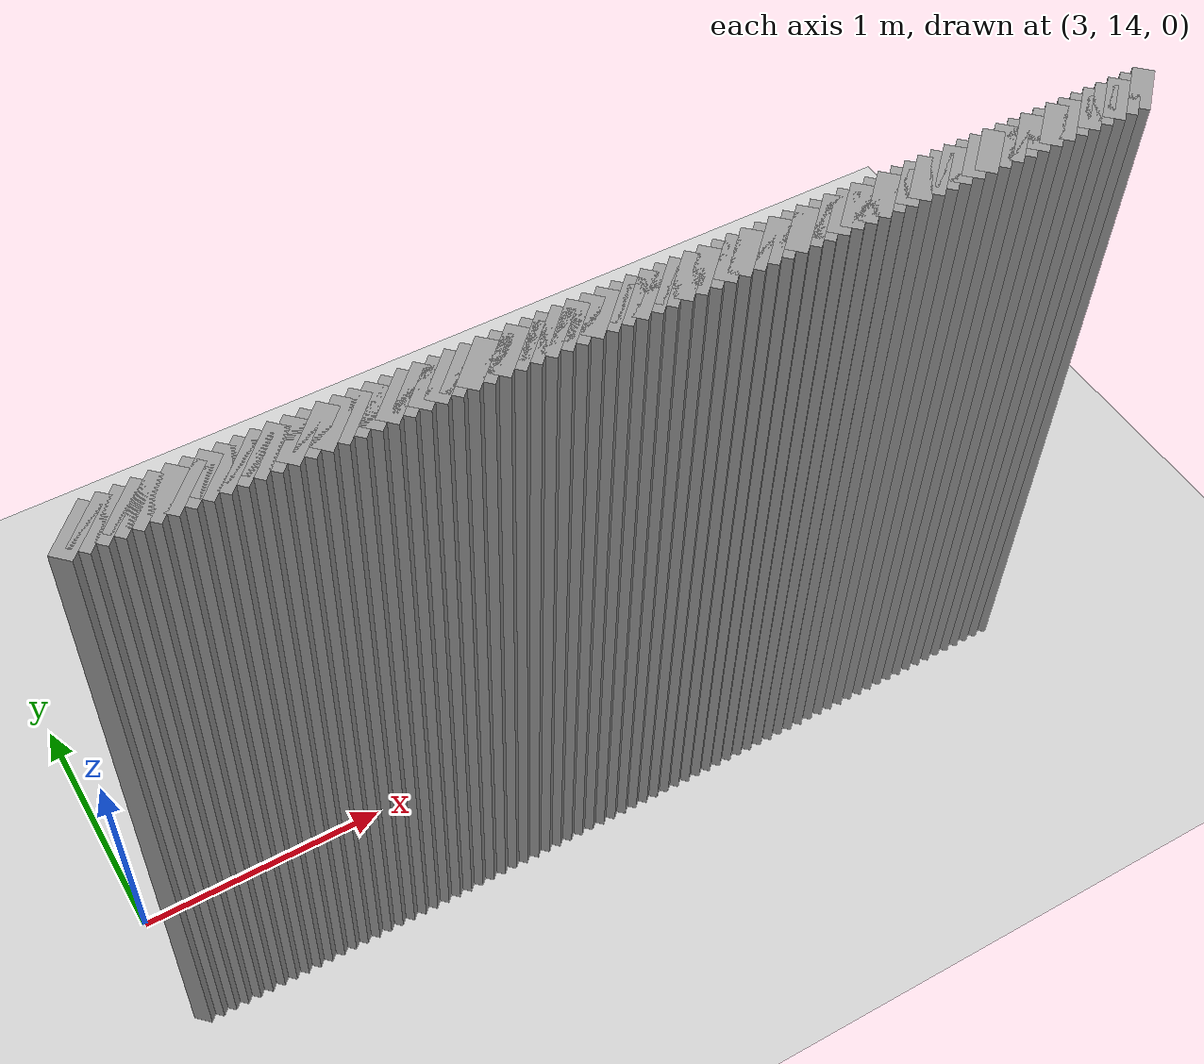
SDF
<sdf version="1.5">
 <world name="default">
  <include><uri>model://ground_plane</uri></include>
  <include><uri>model://sun</uri></include>
  <model name="grey_wall_818">
   <static>1</static>
   <link name="link">
    <pose>3.1 13.600000000000001  1.4 0 0 -0.7853981633974572</pose>
    <collision name="collision">
     <geometry><box><size>0.07071067811865513 .2  2.8</size></box></geometry>
    </collision>
    <visual name="visual">
     <cast_shadows>0</cast_shadows>
     <geometry><box><size>0.07071067811865513 .2  2.8</size></box></geometry>
     <material>
      <script>
       <uri>model://grey_wall/materials/scripts</uri>
       <uri>model://grey_wall/materials/textures</uri>
       <name>vrc/grey_wall</name>
      </script>
     </material>
    </visual>
   </link>
  </model>
  <model name="grey_wall_819">
   <static>1</static>
   <link name="link">
    <pose>3.1500000000000004 13.600000000000001  1.4 0 0 -0.7853981633974572</pose>
    <collision name="collision">
     <geometry><box><size>0.07071067811865513 .2  2.8</size></box></geometry>
    </collision>
    <visual name="visual">
     <cast_shadows>0</cast_shadows>
     <geometry><box><size>0.07071067811865513 .2  2.8</size></box></geometry>
     <material>
      <script>
       <uri>model://grey_wall/materials/scripts</uri>
       <uri>model://grey_wall/materials/textures</uri>
       <name>vrc/grey_wall</name>
      </script>
     </material>
    </visual>
   </link>
  </model>
  <model name="grey_wall_820">
   <static>1</static>
   <link name="link">
    <pose>3.2 13.600000000000001  1.4 0 0 -0.7853981633974572</pose>
    <collision name="collision">
     <geometry><box><size>0.07071067811865513 .2  2.8</size></box></geometry>
    </collision>
    <visual name="visual">
     <cast_shadows>0</cast_shadows>
     <geometry><box><size>0.07071067811865513 .2  2.8</size></box></geometry>
     <material>
      <script>
       <uri>model://grey_wall/materials/scripts</uri>
       <uri>model://grey_wall/materials/textures</uri>
       <name>vrc/grey_wall</name>
      </script>
     </material>
    </visual>
   </link>
  </model>
  <model name="grey_wall_821">
   <static>1</static>
   <link name="link">
    <pose>3.25 13.600000000000001  1.4 0 0 -0.7853981633974572</pose>
    <collision name="collision">
     <geometry><box><size>0.07071067811865513 .2  2.8</size></box></geometry>
    </collision>
    <visual name="visual">
     <cast_shadows>0</cast_shadows>
     <geometry><box><size>0.07071067811865513 .2  2.8</size></box></geometry>
     <material>
      <script>
       <uri>model://grey_wall/materials/scripts</uri>
       <uri>model://grey_wall/materials/textures</uri>
       <name>vrc/grey_wall</name>
      </script>
     </material>
    </visual>
   </link>
  </model>
  <model name="grey_wall_822">
   <static>1</static>
   <link name="link">
    <pose>3.3000000000000003 13.600000000000001  1.4 0 0 -0.7853981633974572</pose>
    <collision name="collision">
     <geometry><box><size>0.07071067811865513 .2  2.8</size></box></geometry>
    </collision>
    <visual name="visual">
     <cast_shadows>0</cast_shadows>
     <geometry><box><size>0.07071067811865513 .2  2.8</size></box></geometry>
     <material>
      <script>
       <uri>model://grey_wall/materials/scripts</uri>
       <uri>model://grey_wall/materials/textures</uri>
       <name>vrc/grey_wall</name>
      </script>
     </material>
    </visual>
   </link>
  </model>
  <model name="grey_wall_823">
   <static>1</static>
   <link name="link">
    <pose>3.35 13.600000000000001  1.4 0 0 -0.7853981633974572</pose>
    <collision name="collision">
     <geometry><box><size>0.07071067811865513 .2  2.8</size></box></geometry>
    </collision>
    <visual name="visual">
     <cast_shadows>0</cast_shadows>
     <geometry><box><size>0.07071067811865513 .2  2.8</size></box></geometry>
     <material>
      <script>
       <uri>model://grey_wall/materials/scripts</uri>
       <uri>model://grey_wall/materials/textures</uri>
       <name>vrc/grey_wall</name>
      </script>
     </material>
    </visual>
   </link>
  </model>
  <model name="grey_wall_824">
   <static>1</static>
   <link name="link">
    <pose>3.4000000000000004 13.600000000000001  1.4 0 0 -0.7853981633974572</pose>
    <collision name="collision">
     <geometry><box><size>0.07071067811865513 .2  2.8</size></box></geometry>
    </collision>
    <visual name="visual">
     <cast_shadows>0</cast_shadows>
     <geometry><box><size>0.07071067811865513 .2  2.8</size></box></geometry>
     <material>
      <script>
       <uri>model://grey_wall/materials/scripts</uri>
       <uri>model://grey_wall/materials/textures</uri>
       <name>vrc/grey_wall</name>
      </script>
     </material>
    </visual>
   </link>
  </model>
  <model name="grey_wall_825">
   <static>1</static>
   <link name="link">
    <pose>3.45 13.600000000000001  1.4 0 0 -0.7853981633974572</pose>
    <collision name="collision">
     <geometry><box><size>0.07071067811865513 .2  2.8</size></box></geometry>
    </collision>
    <visual name="visual">
     <cast_shadows>0</cast_shadows>
     <geometry><box><size>0.07071067811865513 .2  2.8</size></box></geometry>
     <material>
      <script>
       <uri>model://grey_wall/materials/scripts</uri>
       <uri>model://grey_wall/materials/textures</uri>
       <name>vrc/grey_wall</name>
      </script>
     </material>
    </visual>
   </link>
  </model>
  <model name="grey_wall_826">
   <static>1</static>
   <link name="link">
    <pose>3.5 13.600000000000001  1.4 0 0 -0.7853981633974572</pose>
    <collision name="collision">
     <geometry><box><size>0.07071067811865513 .2  2.8</size></box></geometry>
    </collision>
    <visual name="visual">
     <cast_shadows>0</cast_shadows>
     <geometry><box><size>0.07071067811865513 .2  2.8</size></box></geometry>
     <material>
      <script>
       <uri>model://grey_wall/materials/scripts</uri>
       <uri>model://grey_wall/materials/textures</uri>
       <name>vrc/grey_wall</name>
      </script>
     </material>
    </visual>
   </link>
  </model>
  <model name="grey_wall_827">
   <static>1</static>
   <link name="link">
    <pose>3.5500000000000003 13.600000000000001  1.4 0 0 -0.7853981633974572</pose>
    <collision name="collision">
     <geometry><box><size>0.07071067811865513 .2  2.8</size></box></geometry>
    </collision>
    <visual name="visual">
     <cast_shadows>0</cast_shadows>
     <geometry><box><size>0.07071067811865513 .2  2.8</size></box></geometry>
     <material>
      <script>
       <uri>model://grey_wall/materials/scripts</uri>
       <uri>model://grey_wall/materials/textures</uri>
       <name>vrc/grey_wall</name>
      </script>
     </material>
    </visual>
   </link>
  </model>
  <model name="grey_wall_828">
   <static>1</static>
   <link name="link">
    <pose>3.6 13.600000000000001  1.4 0 0 -0.7853981633974572</pose>
    <collision name="collision">
     <geometry><box><size>0.07071067811865513 .2  2.8</size></box></geometry>
    </collision>
    <visual name="visual">
     <cast_shadows>0</cast_shadows>
     <geometry><box><size>0.07071067811865513 .2  2.8</size></box></geometry>
     <material>
      <script>
       <uri>model://grey_wall/materials/scripts</uri>
       <uri>model://grey_wall/materials/textures</uri>
       <name>vrc/grey_wall</name>
      </script>
     </material>
    </visual>
   </link>
  </model>
  <model name="grey_wall_829">
   <static>1</static>
   <link name="link">
    <pose>3.6500000000000004 13.600000000000001  1.4 0 0 -0.7853981633974572</pose>
    <collision name="collision">
     <geometry><box><size>0.07071067811865513 .2  2.8</size></box></geometry>
    </collision>
    <visual name="visual">
     <cast_shadows>0</cast_shadows>
     <geometry><box><size>0.07071067811865513 .2  2.8</size></box></geometry>
     <material>
      <script>
       <uri>model://grey_wall/materials/scripts</uri>
       <uri>model://grey_wall/materials/textures</uri>
       <name>vrc/grey_wall</name>
      </script>
     </material>
    </visual>
   </link>
  </model>
  <model name="grey_wall_830">
   <static>1</static>
   <link name="link">
    <pose>3.7 13.600000000000001  1.4 0 0 -0.7853981633974572</pose>
    <collision name="collision">
     <geometry><box><size>0.07071067811865513 .2  2.8</size></box></geometry>
    </collision>
    <visual name="visual">
     <cast_shadows>0</cast_shadows>
     <geometry><box><size>0.07071067811865513 .2  2.8</size></box></geometry>
     <material>
      <script>
       <uri>model://grey_wall/materials/scripts</uri>
       <uri>model://grey_wall/materials/textures</uri>
       <name>vrc/grey_wall</name>
      </script>
     </material>
    </visual>
   </link>
  </model>
  <model name="grey_wall_831">
   <static>1</static>
   <link name="link">
    <pose>3.75 13.600000000000001  1.4 0 0 -0.7853981633974572</pose>
    <collision name="collision">
     <geometry><box><size>0.07071067811865513 .2  2.8</size></box></geometry>
    </collision>
    <visual name="visual">
     <cast_shadows>0</cast_shadows>
     <geometry><box><size>0.07071067811865513 .2  2.8</size></box></geometry>
     <material>
      <script>
       <uri>model://grey_wall/materials/scripts</uri>
       <uri>model://grey_wall/materials/textures</uri>
       <name>vrc/grey_wall</name>
      </script>
     </material>
    </visual>
   </link>
  </model>
  <model name="grey_wall_832">
   <static>1</static>
   <link name="link">
    <pose>3.8000000000000003 13.600000000000001  1.4 0 0 -0.7853981633974572</pose>
    <collision name="collision">
     <geometry><box><size>0.07071067811865513 .2  2.8</size></box></geometry>
    </collision>
    <visual name="visual">
     <cast_shadows>0</cast_shadows>
     <geometry><box><size>0.07071067811865513 .2  2.8</size></box></geometry>
     <material>
      <script>
       <uri>model://grey_wall/materials/scripts</uri>
       <uri>model://grey_wall/materials/textures</uri>
       <name>vrc/grey_wall</name>
      </script>
     </material>
    </visual>
   </link>
  </model>
  <model name="grey_wall_833">
   <static>1</static>
   <link name="link">
    <pose>3.85 13.600000000000001  1.4 0 0 -0.7853981633974572</pose>
    <collision name="collision">
     <geometry><box><size>0.07071067811865513 .2  2.8</size></box></geometry>
    </collision>
    <visual name="visual">
     <cast_shadows>0</cast_shadows>
     <geometry><box><size>0.07071067811865513 .2  2.8</size></box></geometry>
     <material>
      <script>
       <uri>model://grey_wall/materials/scripts</uri>
       <uri>model://grey_wall/materials/textures</uri>
       <name>vrc/grey_wall</name>
      </script>
     </material>
    </visual>
   </link>
  </model>
  <model name="grey_wall_834">
   <static>1</static>
   <link name="link">
    <pose>3.9000000000000004 13.600000000000001  1.4 0 0 -0.7853981633974572</pose>
    <collision name="collision">
     <geometry><box><size>0.07071067811865513 .2  2.8</size></box></geometry>
    </collision>
    <visual name="visual">
     <cast_shadows>0</cast_shadows>
     <geometry><box><size>0.07071067811865513 .2  2.8</size></box></geometry>
     <material>
      <script>
       <uri>model://grey_wall/materials/scripts</uri>
       <uri>model://grey_wall/materials/textures</uri>
       <name>vrc/grey_wall</name>
      </script>
     </material>
    </visual>
   </link>
  </model>
  <model name="grey_wall_835">
   <static>1</static>
   <link name="link">
    <pose>3.95 13.600000000000001  1.4 0 0 -0.7853981633974572</pose>
    <collision name="collision">
     <geometry><box><size>0.07071067811865513 .2  2.8</size></box></geometry>
    </collision>
    <visual name="visual">
     <cast_shadows>0</cast_shadows>
     <geometry><box><size>0.07071067811865513 .2  2.8</size></box></geometry>
     <material>
      <script>
       <uri>model://grey_wall/materials/scripts</uri>
       <uri>model://grey_wall/materials/textures</uri>
       <name>vrc/grey_wall</name>
      </script>
     </material>
    </visual>
   </link>
  </model>
  <model name="grey_wall_836">
   <static>1</static>
   <link name="link">
    <pose>4.0 13.600000000000001  1.4 0 0 -0.7853981633974527</pose>
    <collision name="collision">
     <geometry><box><size>0.07071067811865545 .2  2.8</size></box></geometry>
    </collision>
    <visual name="visual">
     <cast_shadows>0</cast_shadows>
     <geometry><box><size>0.07071067811865545 .2  2.8</size></box></geometry>
     <material>
      <script>
       <uri>model://grey_wall/materials/scripts</uri>
       <uri>model://grey_wall/materials/textures</uri>
       <name>vrc/grey_wall</name>
      </script>
     </material>
    </visual>
   </link>
  </model>
  <model name="grey_wall_837">
   <static>1</static>
   <link name="link">
    <pose>4.05 13.600000000000001  1.4 0 0 -0.7853981633974483</pose>
    <collision name="collision">
     <geometry><box><size>0.07071067811865576 .2  2.8</size></box></geometry>
    </collision>
    <visual name="visual">
     <cast_shadows>0</cast_shadows>
     <geometry><box><size>0.07071067811865576 .2  2.8</size></box></geometry>
     <material>
      <script>
       <uri>model://grey_wall/materials/scripts</uri>
       <uri>model://grey_wall/materials/textures</uri>
       <name>vrc/grey_wall</name>
      </script>
     </material>
    </visual>
   </link>
  </model>
  <model name="grey_wall_838">
   <static>1</static>
   <link name="link">
    <pose>4.1000000000000005 13.600000000000001  1.4 0 0 -0.7853981633974483</pose>
    <collision name="collision">
     <geometry><box><size>0.07071067811865576 .2  2.8</size></box></geometry>
    </collision>
    <visual name="visual">
     <cast_shadows>0</cast_shadows>
     <geometry><box><size>0.07071067811865576 .2  2.8</size></box></geometry>
     <material>
      <script>
       <uri>model://grey_wall/materials/scripts</uri>
       <uri>model://grey_wall/materials/textures</uri>
       <name>vrc/grey_wall</name>
      </script>
     </material>
    </visual>
   </link>
  </model>
  <model name="grey_wall_839">
   <static>1</static>
   <link name="link">
    <pose>4.15 13.600000000000001  1.4 0 0 -0.7853981633974483</pose>
    <collision name="collision">
     <geometry><box><size>0.07071067811865576 .2  2.8</size></box></geometry>
    </collision>
    <visual name="visual">
     <cast_shadows>0</cast_shadows>
     <geometry><box><size>0.07071067811865576 .2  2.8</size></box></geometry>
     <material>
      <script>
       <uri>model://grey_wall/materials/scripts</uri>
       <uri>model://grey_wall/materials/textures</uri>
       <name>vrc/grey_wall</name>
      </script>
     </material>
    </visual>
   </link>
  </model>
  <model name="grey_wall_840">
   <static>1</static>
   <link name="link">
    <pose>4.2 13.600000000000001  1.4 0 0 -0.7853981633974483</pose>
    <collision name="collision">
     <geometry><box><size>0.07071067811865576 .2  2.8</size></box></geometry>
    </collision>
    <visual name="visual">
     <cast_shadows>0</cast_shadows>
     <geometry><box><size>0.07071067811865576 .2  2.8</size></box></geometry>
     <material>
      <script>
       <uri>model://grey_wall/materials/scripts</uri>
       <uri>model://grey_wall/materials/textures</uri>
       <name>vrc/grey_wall</name>
      </script>
     </material>
    </visual>
   </link>
  </model>
  <model name="grey_wall_841">
   <static>1</static>
   <link name="link">
    <pose>4.25 13.600000000000001  1.4 0 0 -0.7853981633974483</pose>
    <collision name="collision">
     <geometry><box><size>0.07071067811865576 .2  2.8</size></box></geometry>
    </collision>
    <visual name="visual">
     <cast_shadows>0</cast_shadows>
     <geometry><box><size>0.07071067811865576 .2  2.8</size></box></geometry>
     <material>
      <script>
       <uri>model://grey_wall/materials/scripts</uri>
       <uri>model://grey_wall/materials/textures</uri>
       <name>vrc/grey_wall</name>
      </script>
     </material>
    </visual>
   </link>
  </model>
  <model name="grey_wall_842">
   <static>1</static>
   <link name="link">
    <pose>4.3 13.600000000000001  1.4 0 0 -0.7853981633974483</pose>
    <collision name="collision">
     <geometry><box><size>0.07071067811865576 .2  2.8</size></box></geometry>
    </collision>
    <visual name="visual">
     <cast_shadows>0</cast_shadows>
     <geometry><box><size>0.07071067811865576 .2  2.8</size></box></geometry>
     <material>
      <script>
       <uri>model://grey_wall/materials/scripts</uri>
       <uri>model://grey_wall/materials/textures</uri>
       <name>vrc/grey_wall</name>
      </script>
     </material>
    </visual>
   </link>
  </model>
  <model name="grey_wall_843">
   <static>1</static>
   <link name="link">
    <pose>4.3500000000000005 13.600000000000001  1.4 0 0 -0.7853981633974483</pose>
    <collision name="collision">
     <geometry><box><size>0.07071067811865576 .2  2.8</size></box></geometry>
    </collision>
    <visual name="visual">
     <cast_shadows>0</cast_shadows>
     <geometry><box><size>0.07071067811865576 .2  2.8</size></box></geometry>
     <material>
      <script>
       <uri>model://grey_wall/materials/scripts</uri>
       <uri>model://grey_wall/materials/textures</uri>
       <name>vrc/grey_wall</name>
      </script>
     </material>
    </visual>
   </link>
  </model>
  <model name="grey_wall_844">
   <static>1</static>
   <link name="link">
    <pose>4.4 13.600000000000001  1.4 0 0 -0.7853981633974483</pose>
    <collision name="collision">
     <geometry><box><size>0.07071067811865576 .2  2.8</size></box></geometry>
    </collision>
    <visual name="visual">
     <cast_shadows>0</cast_shadows>
     <geometry><box><size>0.07071067811865576 .2  2.8</size></box></geometry>
     <material>
      <script>
       <uri>model://grey_wall/materials/scripts</uri>
       <uri>model://grey_wall/materials/textures</uri>
       <name>vrc/grey_wall</name>
      </script>
     </material>
    </visual>
   </link>
  </model>
  <model name="grey_wall_845">
   <static>1</static>
   <link name="link">
    <pose>4.45 13.600000000000001  1.4 0 0 -0.7853981633974483</pose>
    <collision name="collision">
     <geometry><box><size>0.07071067811865576 .2  2.8</size></box></geometry>
    </collision>
    <visual name="visual">
     <cast_shadows>0</cast_shadows>
     <geometry><box><size>0.07071067811865576 .2  2.8</size></box></geometry>
     <material>
      <script>
       <uri>model://grey_wall/materials/scripts</uri>
       <uri>model://grey_wall/materials/textures</uri>
       <name>vrc/grey_wall</name>
      </script>
     </material>
    </visual>
   </link>
  </model>
  <model name="grey_wall_846">
   <static>1</static>
   <link name="link">
    <pose>4.5 13.600000000000001  1.4 0 0 -0.7853981633974483</pose>
    <collision name="collision">
     <geometry><box><size>0.07071067811865576 .2  2.8</size></box></geometry>
    </collision>
    <visual name="visual">
     <cast_shadows>0</cast_shadows>
     <geometry><box><size>0.07071067811865576 .2  2.8</size></box></geometry>
     <material>
      <script>
       <uri>model://grey_wall/materials/scripts</uri>
       <uri>model://grey_wall/materials/textures</uri>
       <name>vrc/grey_wall</name>
      </script>
     </material>
    </visual>
   </link>
  </model>
  <model name="grey_wall_847">
   <static>1</static>
   <link name="link">
    <pose>4.55 13.600000000000001  1.4 0 0 -0.7853981633974483</pose>
    <collision name="collision">
     <geometry><box><size>0.07071067811865576 .2  2.8</size></box></geometry>
    </collision>
    <visual name="visual">
     <cast_shadows>0</cast_shadows>
     <geometry><box><size>0.07071067811865576 .2  2.8</size></box></geometry>
     <material>
      <script>
       <uri>model://grey_wall/materials/scripts</uri>
       <uri>model://grey_wall/materials/textures</uri>
       <name>vrc/grey_wall</name>
      </script>
     </material>
    </visual>
   </link>
  </model>
  <model name="grey_wall_848">
   <static>1</static>
   <link name="link">
    <pose>4.6000000000000005 13.600000000000001  1.4 0 0 -0.7853981633974483</pose>
    <collision name="collision">
     <geometry><box><size>0.07071067811865576 .2  2.8</size></box></geometry>
    </collision>
    <visual name="visual">
     <cast_shadows>0</cast_shadows>
     <geometry><box><size>0.07071067811865576 .2  2.8</size></box></geometry>
     <material>
      <script>
       <uri>model://grey_wall/materials/scripts</uri>
       <uri>model://grey_wall/materials/textures</uri>
       <name>vrc/grey_wall</name>
      </script>
     </material>
    </visual>
   </link>
  </model>
  <model name="grey_wall_849">
   <static>1</static>
   <link name="link">
    <pose>4.65 13.600000000000001  1.4 0 0 -0.7853981633974483</pose>
    <collision name="collision">
     <geometry><box><size>0.07071067811865576 .2  2.8</size></box></geometry>
    </collision>
    <visual name="visual">
     <cast_shadows>0</cast_shadows>
     <geometry><box><size>0.07071067811865576 .2  2.8</size></box></geometry>
     <material>
      <script>
       <uri>model://grey_wall/materials/scripts</uri>
       <uri>model://grey_wall/materials/textures</uri>
       <name>vrc/grey_wall</name>
      </script>
     </material>
    </visual>
   </link>
  </model>
  <model name="grey_wall_850">
   <static>1</static>
   <link name="link">
    <pose>4.7 13.600000000000001  1.4 0 0 -0.7853981633974483</pose>
    <collision name="collision">
     <geometry><box><size>0.07071067811865576 .2  2.8</size></box></geometry>
    </collision>
    <visual name="visual">
     <cast_shadows>0</cast_shadows>
     <geometry><box><size>0.07071067811865576 .2  2.8</size></box></geometry>
     <material>
      <script>
       <uri>model://grey_wall/materials/scripts</uri>
       <uri>model://grey_wall/materials/textures</uri>
       <name>vrc/grey_wall</name>
      </script>
     </material>
    </visual>
   </link>
  </model>
  <model name="grey_wall_851">
   <static>1</static>
   <link name="link">
    <pose>4.75 13.600000000000001  1.4 0 0 -0.7853981633974483</pose>
    <collision name="collision">
     <geometry><box><size>0.07071067811865576 .2  2.8</size></box></geometry>
    </collision>
    <visual name="visual">
     <cast_shadows>0</cast_shadows>
     <geometry><box><size>0.07071067811865576 .2  2.8</size></box></geometry>
     <material>
      <script>
       <uri>model://grey_wall/materials/scripts</uri>
       <uri>model://grey_wall/materials/textures</uri>
       <name>vrc/grey_wall</name>
      </script>
     </material>
    </visual>
   </link>
  </model>
  <model name="grey_wall_852">
   <static>1</static>
   <link name="link">
    <pose>4.800000000000001 13.600000000000001  1.4 0 0 -0.7853981633974483</pose>
    <collision name="collision">
     <geometry><box><size>0.07071067811865576 .2  2.8</size></box></geometry>
    </collision>
    <visual name="visual">
     <cast_shadows>0</cast_shadows>
     <geometry><box><size>0.07071067811865576 .2  2.8</size></box></geometry>
     <material>
      <script>
       <uri>model://grey_wall/materials/scripts</uri>
       <uri>model://grey_wall/materials/textures</uri>
       <name>vrc/grey_wall</name>
      </script>
     </material>
    </visual>
   </link>
  </model>
  <model name="grey_wall_853">
   <static>1</static>
   <link name="link">
    <pose>4.8500000000000005 13.600000000000001  1.4 0 0 -0.7853981633974483</pose>
    <collision name="collision">
     <geometry><box><size>0.07071067811865576 .2  2.8</size></box></geometry>
    </collision>
    <visual name="visual">
     <cast_shadows>0</cast_shadows>
     <geometry><box><size>0.07071067811865576 .2  2.8</size></box></geometry>
     <material>
      <script>
       <uri>model://grey_wall/materials/scripts</uri>
       <uri>model://grey_wall/materials/textures</uri>
       <name>vrc/grey_wall</name>
      </script>
     </material>
    </visual>
   </link>
  </model>
  <model name="grey_wall_854">
   <static>1</static>
   <link name="link">
    <pose>4.9 13.600000000000001  1.4 0 0 -0.7853981633974483</pose>
    <collision name="collision">
     <geometry><box><size>0.07071067811865576 .2  2.8</size></box></geometry>
    </collision>
    <visual name="visual">
     <cast_shadows>0</cast_shadows>
     <geometry><box><size>0.07071067811865576 .2  2.8</size></box></geometry>
     <material>
      <script>
       <uri>model://grey_wall/materials/scripts</uri>
       <uri>model://grey_wall/materials/textures</uri>
       <name>vrc/grey_wall</name>
      </script>
     </material>
    </visual>
   </link>
  </model>
  <model name="grey_wall_855">
   <static>1</static>
   <link name="link">
    <pose>4.95 13.600000000000001  1.4 0 0 -0.7853981633974483</pose>
    <collision name="collision">
     <geometry><box><size>0.07071067811865576 .2  2.8</size></box></geometry>
    </collision>
    <visual name="visual">
     <cast_shadows>0</cast_shadows>
     <geometry><box><size>0.07071067811865576 .2  2.8</size></box></geometry>
     <material>
      <script>
       <uri>model://grey_wall/materials/scripts</uri>
       <uri>model://grey_wall/materials/textures</uri>
       <name>vrc/grey_wall</name>
      </script>
     </material>
    </visual>
   </link>
  </model>
  <model name="grey_wall_856">
   <static>1</static>
   <link name="link">
    <pose>5.0 13.600000000000001  1.4 0 0 -0.7853981633974483</pose>
    <collision name="collision">
     <geometry><box><size>0.07071067811865576 .2  2.8</size></box></geometry>
    </collision>
    <visual name="visual">
     <cast_shadows>0</cast_shadows>
     <geometry><box><size>0.07071067811865576 .2  2.8</size></box></geometry>
     <material>
      <script>
       <uri>model://grey_wall/materials/scripts</uri>
       <uri>model://grey_wall/materials/textures</uri>
       <name>vrc/grey_wall</name>
      </script>
     </material>
    </visual>
   </link>
  </model>
  <model name="grey_wall_857">
   <static>1</static>
   <link name="link">
    <pose>5.050000000000001 13.600000000000001  1.4 0 0 -0.7853981633974483</pose>
    <collision name="collision">
     <geometry><box><size>0.07071067811865576 .2  2.8</size></box></geometry>
    </collision>
    <visual name="visual">
     <cast_shadows>0</cast_shadows>
     <geometry><box><size>0.07071067811865576 .2  2.8</size></box></geometry>
     <material>
      <script>
       <uri>model://grey_wall/materials/scripts</uri>
       <uri>model://grey_wall/materials/textures</uri>
       <name>vrc/grey_wall</name>
      </script>
     </material>
    </visual>
   </link>
  </model>
  <model name="grey_wall_858">
   <static>1</static>
   <link name="link">
    <pose>5.1000000000000005 13.600000000000001  1.4 0 0 -0.7853981633974483</pose>
    <collision name="collision">
     <geometry><box><size>0.07071067811865576 .2  2.8</size></box></geometry>
    </collision>
    <visual name="visual">
     <cast_shadows>0</cast_shadows>
     <geometry><box><size>0.07071067811865576 .2  2.8</size></box></geometry>
     <material>
      <script>
       <uri>model://grey_wall/materials/scripts</uri>
       <uri>model://grey_wall/materials/textures</uri>
       <name>vrc/grey_wall</name>
      </script>
     </material>
    </visual>
   </link>
  </model>
  <model name="grey_wall_859">
   <static>1</static>
   <link name="link">
    <pose>5.15 13.600000000000001  1.4 0 0 -0.7853981633974483</pose>
    <collision name="collision">
     <geometry><box><size>0.07071067811865576 .2  2.8</size></box></geometry>
    </collision>
    <visual name="visual">
     <cast_shadows>0</cast_shadows>
     <geometry><box><size>0.07071067811865576 .2  2.8</size></box></geometry>
     <material>
      <script>
       <uri>model://grey_wall/materials/scripts</uri>
       <uri>model://grey_wall/materials/textures</uri>
       <name>vrc/grey_wall</name>
      </script>
     </material>
    </visual>
   </link>
  </model>
  <model name="grey_wall_860">
   <static>1</static>
   <link name="link">
    <pose>5.2 13.600000000000001  1.4 0 0 -0.7853981633974483</pose>
    <collision name="collision">
     <geometry><box><size>0.07071067811865576 .2  2.8</size></box></geometry>
    </collision>
    <visual name="visual">
     <cast_shadows>0</cast_shadows>
     <geometry><box><size>0.07071067811865576 .2  2.8</size></box></geometry>
     <material>
      <script>
       <uri>model://grey_wall/materials/scripts</uri>
       <uri>model://grey_wall/materials/textures</uri>
       <name>vrc/grey_wall</name>
      </script>
     </material>
    </visual>
   </link>
  </model>
  <model name="grey_wall_861">
   <static>1</static>
   <link name="link">
    <pose>5.25 13.600000000000001  1.4 0 0 -0.7853981633974483</pose>
    <collision name="collision">
     <geometry><box><size>0.07071067811865576 .2  2.8</size></box></geometry>
    </collision>
    <visual name="visual">
     <cast_shadows>0</cast_shadows>
     <geometry><box><size>0.07071067811865576 .2  2.8</size></box></geometry>
     <material>
      <script>
       <uri>model://grey_wall/materials/scripts</uri>
       <uri>model://grey_wall/materials/textures</uri>
       <name>vrc/grey_wall</name>
      </script>
     </material>
    </visual>
   </link>
  </model>
  <model name="grey_wall_862">
   <static>1</static>
   <link name="link">
    <pose>5.300000000000001 13.600000000000001  1.4 0 0 -0.7853981633974483</pose>
    <collision name="collision">
     <geometry><box><size>0.07071067811865576 .2  2.8</size></box></geometry>
    </collision>
    <visual name="visual">
     <cast_shadows>0</cast_shadows>
     <geometry><box><size>0.07071067811865576 .2  2.8</size></box></geometry>
     <material>
      <script>
       <uri>model://grey_wall/materials/scripts</uri>
       <uri>model://grey_wall/materials/textures</uri>
       <name>vrc/grey_wall</name>
      </script>
     </material>
    </visual>
   </link>
  </model>
  <model name="grey_wall_863">
   <static>1</static>
   <link name="link">
    <pose>5.3500000000000005 13.600000000000001  1.4 0 0 -0.7853981633974483</pose>
    <collision name="collision">
     <geometry><box><size>0.07071067811865576 .2  2.8</size></box></geometry>
    </collision>
    <visual name="visual">
     <cast_shadows>0</cast_shadows>
     <geometry><box><size>0.07071067811865576 .2  2.8</size></box></geometry>
     <material>
      <script>
       <uri>model://grey_wall/materials/scripts</uri>
       <uri>model://grey_wall/materials/textures</uri>
       <name>vrc/grey_wall</name>
      </script>
     </material>
    </visual>
   </link>
  </model>
  <model name="grey_wall_864">
   <static>1</static>
   <link name="link">
    <pose>5.4 13.600000000000001  1.4 0 0 -0.7853981633974483</pose>
    <collision name="collision">
     <geometry><box><size>0.07071067811865576 .2  2.8</size></box></geometry>
    </collision>
    <visual name="visual">
     <cast_shadows>0</cast_shadows>
     <geometry><box><size>0.07071067811865576 .2  2.8</size></box></geometry>
     <material>
      <script>
       <uri>model://grey_wall/materials/scripts</uri>
       <uri>model://grey_wall/materials/textures</uri>
       <name>vrc/grey_wall</name>
      </script>
     </material>
    </visual>
   </link>
  </model>
  <model name="grey_wall_865">
   <static>1</static>
   <link name="link">
    <pose>5.45 13.600000000000001  1.4 0 0 -0.7853981633974483</pose>
    <collision name="collision">
     <geometry><box><size>0.07071067811865576 .2  2.8</size></box></geometry>
    </collision>
    <visual name="visual">
     <cast_shadows>0</cast_shadows>
     <geometry><box><size>0.07071067811865576 .2  2.8</size></box></geometry>
     <material>
      <script>
       <uri>model://grey_wall/materials/scripts</uri>
       <uri>model://grey_wall/materials/textures</uri>
       <name>vrc/grey_wall</name>
      </script>
     </material>
    </visual>
   </link>
  </model>
  <model name="grey_wall_866">
   <static>1</static>
   <link name="link">
    <pose>5.5 13.600000000000001  1.4 0 0 -0.7853981633974483</pose>
    <collision name="collision">
     <geometry><box><size>0.07071067811865576 .2  2.8</size></box></geometry>
    </collision>
    <visual name="visual">
     <cast_shadows>0</cast_shadows>
     <geometry><box><size>0.07071067811865576 .2  2.8</size></box></geometry>
     <material>
      <script>
       <uri>model://grey_wall/materials/scripts</uri>
       <uri>model://grey_wall/materials/textures</uri>
       <name>vrc/grey_wall</name>
      </script>
     </material>
    </visual>
   </link>
  </model>
  <model name="grey_wall_867">
   <static>1</static>
   <link name="link">
    <pose>5.550000000000001 13.600000000000001  1.4 0 0 -0.7853981633974483</pose>
    <collision name="collision">
     <geometry><box><size>0.07071067811865576 .2  2.8</size></box></geometry>
    </collision>
    <visual name="visual">
     <cast_shadows>0</cast_shadows>
     <geometry><box><size>0.07071067811865576 .2  2.8</size></box></geometry>
     <material>
      <script>
       <uri>model://grey_wall/materials/scripts</uri>
       <uri>model://grey_wall/materials/textures</uri>
       <name>vrc/grey_wall</name>
      </script>
     </material>
    </visual>
   </link>
  </model>
  <model name="grey_wall_868">
   <static>1</static>
   <link name="link">
    <pose>5.6000000000000005 13.600000000000001  1.4 0 0 -0.7853981633974483</pose>
    <collision name="collision">
     <geometry><box><size>0.07071067811865576 .2  2.8</size></box></geometry>
    </collision>
    <visual name="visual">
     <cast_shadows>0</cast_shadows>
     <geometry><box><size>0.07071067811865576 .2  2.8</size></box></geometry>
     <material>
      <script>
       <uri>model://grey_wall/materials/scripts</uri>
       <uri>model://grey_wall/materials/textures</uri>
       <name>vrc/grey_wall</name>
      </script>
     </material>
    </visual>
   </link>
  </model>
  <model name="grey_wall_869">
   <static>1</static>
   <link name="link">
    <pose>5.65 13.600000000000001  1.4 0 0 -0.7853981633974483</pose>
    <collision name="collision">
     <geometry><box><size>0.07071067811865576 .2  2.8</size></box></geometry>
    </collision>
    <visual name="visual">
     <cast_shadows>0</cast_shadows>
     <geometry><box><size>0.07071067811865576 .2  2.8</size></box></geometry>
     <material>
      <script>
       <uri>model://grey_wall/materials/scripts</uri>
       <uri>model://grey_wall/materials/textures</uri>
       <name>vrc/grey_wall</name>
      </script>
     </material>
    </visual>
   </link>
  </model>
  <model name="grey_wall_870">
   <static>1</static>
   <link name="link">
    <pose>5.7 13.600000000000001  1.4 0 0 -0.7853981633974483</pose>
    <collision name="collision">
     <geometry><box><size>0.07071067811865576 .2  2.8</size></box></geometry>
    </collision>
    <visual name="visual">
     <cast_shadows>0</cast_shadows>
     <geometry><box><size>0.07071067811865576 .2  2.8</size></box></geometry>
     <material>
      <script>
       <uri>model://grey_wall/materials/scripts</uri>
       <uri>model://grey_wall/materials/textures</uri>
       <name>vrc/grey_wall</name>
      </script>
     </material>
    </visual>
   </link>
  </model>
  <model name="grey_wall_871">
   <static>1</static>
   <link name="link">
    <pose>5.75 13.600000000000001  1.4 0 0 -0.7853981633974483</pose>
    <collision name="collision">
     <geometry><box><size>0.07071067811865576 .2  2.8</size></box></geometry>
    </collision>
    <visual name="visual">
     <cast_shadows>0</cast_shadows>
     <geometry><box><size>0.07071067811865576 .2  2.8</size></box></geometry>
     <material>
      <script>
       <uri>model://grey_wall/materials/scripts</uri>
       <uri>model://grey_wall/materials/textures</uri>
       <name>vrc/grey_wall</name>
      </script>
     </material>
    </visual>
   </link>
  </model>
  <model name="grey_wall_872">
   <static>1</static>
   <link name="link">
    <pose>5.800000000000001 13.600000000000001  1.4 0 0 -0.7853981633974483</pose>
    <collision name="collision">
     <geometry><box><size>0.07071067811865576 .2  2.8</size></box></geometry>
    </collision>
    <visual name="visual">
     <cast_shadows>0</cast_shadows>
     <geometry><box><size>0.07071067811865576 .2  2.8</size></box></geometry>
     <material>
      <script>
       <uri>model://grey_wall/materials/scripts</uri>
       <uri>model://grey_wall/materials/textures</uri>
       <name>vrc/grey_wall</name>
      </script>
     </material>
    </visual>
   </link>
  </model>
  <model name="grey_wall_873">
   <static>1</static>
   <link name="link">
    <pose>5.8500000000000005 13.600000000000001  1.4 0 0 -0.7853981633974483</pose>
    <collision name="collision">
     <geometry><box><size>0.07071067811865576 .2  2.8</size></box></geometry>
    </collision>
    <visual name="visual">
     <cast_shadows>0</cast_shadows>
     <geometry><box><size>0.07071067811865576 .2  2.8</size></box></geometry>
     <material>
      <script>
       <uri>model://grey_wall/materials/scripts</uri>
       <uri>model://grey_wall/materials/textures</uri>
       <name>vrc/grey_wall</name>
      </script>
     </material>
    </visual>
   </link>
  </model>
  <model name="grey_wall_874">
   <static>1</static>
   <link name="link">
    <pose>5.9 13.600000000000001  1.4 0 0 -0.7853981633974483</pose>
    <collision name="collision">
     <geometry><box><size>0.07071067811865576 .2  2.8</size></box></geometry>
    </collision>
    <visual name="visual">
     <cast_shadows>0</cast_shadows>
     <geometry><box><size>0.07071067811865576 .2  2.8</size></box></geometry>
     <material>
      <script>
       <uri>model://grey_wall/materials/scripts</uri>
       <uri>model://grey_wall/materials/textures</uri>
       <name>vrc/grey_wall</name>
      </script>
     </material>
    </visual>
   </link>
  </model>
  <model name="grey_wall_875">
   <static>1</static>
   <link name="link">
    <pose>5.95 13.600000000000001  1.4 0 0 -0.7853981633974483</pose>
    <collision name="collision">
     <geometry><box><size>0.07071067811865576 .2  2.8</size></box></geometry>
    </collision>
    <visual name="visual">
     <cast_shadows>0</cast_shadows>
     <geometry><box><size>0.07071067811865576 .2  2.8</size></box></geometry>
     <material>
      <script>
       <uri>model://grey_wall/materials/scripts</uri>
       <uri>model://grey_wall/materials/textures</uri>
       <name>vrc/grey_wall</name>
      </script>
     </material>
    </visual>
   </link>
  </model>
  <model name="grey_wall_876">
   <static>1</static>
   <link name="link">
    <pose>6.0 13.600000000000001  1.4 0 0 -0.7853981633974483</pose>
    <collision name="collision">
     <geometry><box><size>0.07071067811865576 .2  2.8</size></box></geometry>
    </collision>
    <visual name="visual">
     <cast_shadows>0</cast_shadows>
     <geometry><box><size>0.07071067811865576 .2  2.8</size></box></geometry>
     <material>
      <script>
       <uri>model://grey_wall/materials/scripts</uri>
       <uri>model://grey_wall/materials/textures</uri>
       <name>vrc/grey_wall</name>
      </script>
     </material>
    </visual>
   </link>
  </model>
  <model name="grey_wall_877">
   <static>1</static>
   <link name="link">
    <pose>6.050000000000001 13.600000000000001  1.4 0 0 -0.7853981633974483</pose>
    <collision name="collision">
     <geometry><box><size>0.07071067811865576 .2  2.8</size></box></geometry>
    </collision>
    <visual name="visual">
     <cast_shadows>0</cast_shadows>
     <geometry><box><size>0.07071067811865576 .2  2.8</size></box></geometry>
     <material>
      <script>
       <uri>model://grey_wall/materials/scripts</uri>
       <uri>model://grey_wall/materials/textures</uri>
       <name>vrc/grey_wall</name>
      </script>
     </material>
    </visual>
   </link>
  </model>
  <model name="grey_wall_878">
   <static>1</static>
   <link name="link">
    <pose>6.1000000000000005 13.600000000000001  1.4 0 0 -0.7853981633974483</pose>
    <collision name="collision">
     <geometry><box><size>0.07071067811865576 .2  2.8</size></box></geometry>
    </collision>
    <visual name="visual">
     <cast_shadows>0</cast_shadows>
     <geometry><box><size>0.07071067811865576 .2  2.8</size></box></geometry>
     <material>
      <script>
       <uri>model://grey_wall/materials/scripts</uri>
       <uri>model://grey_wall/materials/textures</uri>
       <name>vrc/grey_wall</name>
      </script>
     </material>
    </visual>
   </link>
  </model>
  <model name="grey_wall_879">
   <static>1</static>
   <link name="link">
    <pose>6.15 13.600000000000001  1.4 0 0 -0.7853981633974483</pose>
    <collision name="collision">
     <geometry><box><size>0.07071067811865576 .2  2.8</size></box></geometry>
    </collision>
    <visual name="visual">
     <cast_shadows>0</cast_shadows>
     <geometry><box><size>0.07071067811865576 .2  2.8</size></box></geometry>
     <material>
      <script>
       <uri>model://grey_wall/materials/scripts</uri>
       <uri>model://grey_wall/materials/textures</uri>
       <name>vrc/grey_wall</name>
      </script>
     </material>
    </visual>
   </link>
  </model>
  <model name="grey_wall_880">
   <static>1</static>
   <link name="link">
    <pose>6.2 13.600000000000001  1.4 0 0 -0.7853981633974483</pose>
    <collision name="collision">
     <geometry><box><size>0.07071067811865576 .2  2.8</size></box></geometry>
    </collision>
    <visual name="visual">
     <cast_shadows>0</cast_shadows>
     <geometry><box><size>0.07071067811865576 .2  2.8</size></box></geometry>
     <material>
      <script>
       <uri>model://grey_wall/materials/scripts</uri>
       <uri>model://grey_wall/materials/textures</uri>
       <name>vrc/grey_wall</name>
      </script>
     </material>
    </visual>
   </link>
  </model>
  <model name="grey_wall_881">
   <static>1</static>
   <link name="link">
    <pose>6.25 13.600000000000001  1.4 0 0 -0.7853981633974483</pose>
    <collision name="collision">
     <geometry><box><size>0.07071067811865576 .2  2.8</size></box></geometry>
    </collision>
    <visual name="visual">
     <cast_shadows>0</cast_shadows>
     <geometry><box><size>0.07071067811865576 .2  2.8</size></box></geometry>
     <material>
      <script>
       <uri>model://grey_wall/materials/scripts</uri>
       <uri>model://grey_wall/materials/textures</uri>
       <name>vrc/grey_wall</name>
      </script>
     </material>
    </visual>
   </link>
  </model>
  <model name="grey_wall_882">
   <static>1</static>
   <link name="link">
    <pose>6.300000000000001 13.600000000000001  1.4 0 0 -0.7853981633974483</pose>
    <collision name="collision">
     <geometry><box><size>0.07071067811865576 .2  2.8</size></box></geometry>
    </collision>
    <visual name="visual">
     <cast_shadows>0</cast_shadows>
     <geometry><box><size>0.07071067811865576 .2  2.8</size></box></geometry>
     <material>
      <script>
       <uri>model://grey_wall/materials/scripts</uri>
       <uri>model://grey_wall/materials/textures</uri>
       <name>vrc/grey_wall</name>
      </script>
     </material>
    </visual>
   </link>
  </model>
  <model name="grey_wall_883">
   <static>1</static>
   <link name="link">
    <pose>6.3500000000000005 13.600000000000001  1.4 0 0 -0.7853981633974483</pose>
    <collision name="collision">
     <geometry><box><size>0.07071067811865576 .2  2.8</size></box></geometry>
    </collision>
    <visual name="visual">
     <cast_shadows>0</cast_shadows>
     <geometry><box><size>0.07071067811865576 .2  2.8</size></box></geometry>
     <material>
      <script>
       <uri>model://grey_wall/materials/scripts</uri>
       <uri>model://grey_wall/materials/textures</uri>
       <name>vrc/grey_wall</name>
      </script>
     </material>
    </visual>
   </link>
  </model>
  <model name="grey_wall_884">
   <static>1</static>
   <link name="link">
    <pose>6.4 13.600000000000001  1.4 0 0 -0.7853981633974483</pose>
    <collision name="collision">
     <geometry><box><size>0.07071067811865576 .2  2.8</size></box></geometry>
    </collision>
    <visual name="visual">
     <cast_shadows>0</cast_shadows>
     <geometry><box><size>0.07071067811865576 .2  2.8</size></box></geometry>
     <material>
      <script>
       <uri>model://grey_wall/materials/scripts</uri>
       <uri>model://grey_wall/materials/textures</uri>
       <name>vrc/grey_wall</name>
      </script>
     </material>
    </visual>
   </link>
  </model>
  <model name="grey_wall_885">
   <static>1</static>
   <link name="link">
    <pose>6.45 13.600000000000001  1.4 0 0 -0.7853981633974483</pose>
    <collision name="collision">
     <geometry><box><size>0.07071067811865576 .2  2.8</size></box></geometry>
    </collision>
    <visual name="visual">
     <cast_shadows>0</cast_shadows>
     <geometry><box><size>0.07071067811865576 .2  2.8</size></box></geometry>
     <material>
      <script>
       <uri>model://grey_wall/materials/scripts</uri>
       <uri>model://grey_wall/materials/textures</uri>
       <name>vrc/grey_wall</name>
      </script>
     </material>
    </visual>
   </link>
  </model>
  <model name="grey_wall_886">
   <static>1</static>
   <link name="link">
    <pose>6.5 13.600000000000001  1.4 0 0 -0.7853981633974483</pose>
    <collision name="collision">
     <geometry><box><size>0.07071067811865576 .2  2.8</size></box></geometry>
    </collision>
    <visual name="visual">
     <cast_shadows>0</cast_shadows>
     <geometry><box><size>0.07071067811865576 .2  2.8</size></box></geometry>
     <material>
      <script>
       <uri>model://grey_wall/materials/scripts</uri>
       <uri>model://grey_wall/materials/textures</uri>
       <name>vrc/grey_wall</name>
      </script>
     </material>
    </visual>
   </link>
  </model>
  <model name="grey_wall_887">
   <static>1</static>
   <link name="link">
    <pose>6.550000000000001 13.600000000000001  1.4 0 0 -0.7853981633974483</pose>
    <collision name="collision">
     <geometry><box><size>0.07071067811865576 .2  2.8</size></box></geometry>
    </collision>
    <visual name="visual">
     <cast_shadows>0</cast_shadows>
     <geometry><box><size>0.07071067811865576 .2  2.8</size></box></geometry>
     <material>
      <script>
       <uri>model://grey_wall/materials/scripts</uri>
       <uri>model://grey_wall/materials/textures</uri>
       <name>vrc/grey_wall</name>
      </script>
     </material>
    </visual>
   </link>
  </model>
  <model name="grey_wall_888">
   <static>1</static>
   <link name="link">
    <pose>6.6000000000000005 13.600000000000001  1.4 0 0 -0.7853981633974483</pose>
    <collision name="collision">
     <geometry><box><size>0.07071067811865576 .2  2.8</size></box></geometry>
    </collision>
    <visual name="visual">
     <cast_shadows>0</cast_shadows>
     <geometry><box><size>0.07071067811865576 .2  2.8</size></box></geometry>
     <material>
      <script>
       <uri>model://grey_wall/materials/scripts</uri>
       <uri>model://grey_wall/materials/textures</uri>
       <name>vrc/grey_wall</name>
      </script>
     </material>
    </visual>
   </link>
  </model>
  <model name="grey_wall_889">
   <static>1</static>
   <link name="link">
    <pose>6.65 13.600000000000001  1.4 0 0 -0.7853981633974483</pose>
    <collision name="collision">
     <geometry><box><size>0.07071067811865576 .2  2.8</size></box></geometry>
    </collision>
    <visual name="visual">
     <cast_shadows>0</cast_shadows>
     <geometry><box><size>0.07071067811865576 .2  2.8</size></box></geometry>
     <material>
      <script>
       <uri>model://grey_wall/materials/scripts</uri>
       <uri>model://grey_wall/materials/textures</uri>
       <name>vrc/grey_wall</name>
      </script>
     </material>
    </visual>
   </link>
  </model>
  <model name="grey_wall_890">
   <static>1</static>
   <link name="link">
    <pose>6.7 13.600000000000001  1.4 0 0 -0.7853981633974483</pose>
    <collision name="collision">
     <geometry><box><size>0.07071067811865576 .2  2.8</size></box></geometry>
    </collision>
    <visual name="visual">
     <cast_shadows>0</cast_shadows>
     <geometry><box><size>0.07071067811865576 .2  2.8</size></box></geometry>
     <material>
      <script>
       <uri>model://grey_wall/materials/scripts</uri>
       <uri>model://grey_wall/materials/textures</uri>
       <name>vrc/grey_wall</name>
      </script>
     </material>
    </visual>
   </link>
  </model>
 </world>
</sdf>
